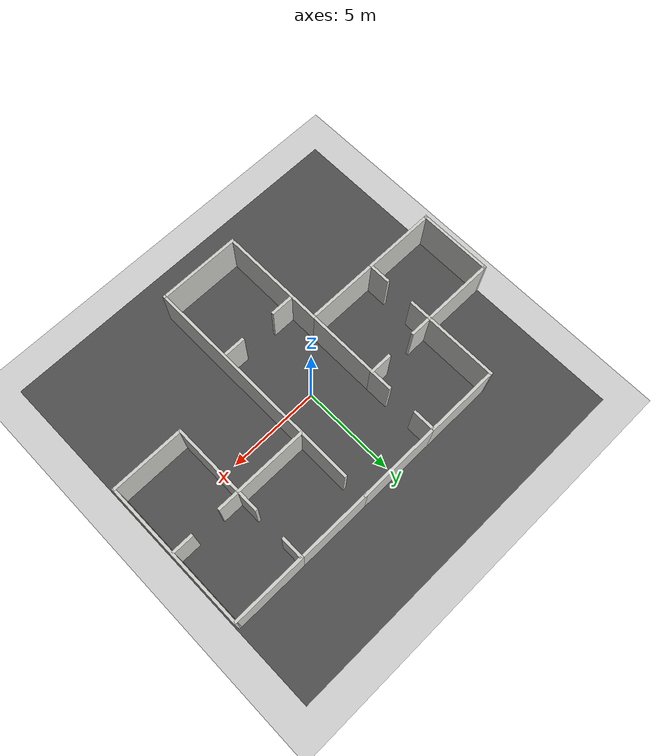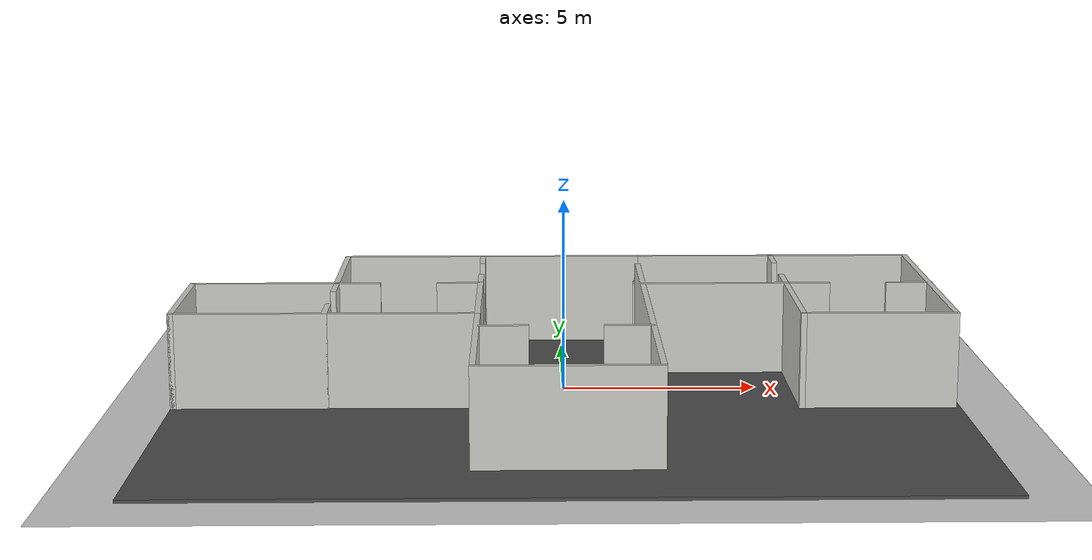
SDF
<sdf version="1.6">
 <world name="default">
  <model name="ground_plane">
   <static>1</static>
   <link name="link">
    <collision name="collision">
     <geometry><plane><normal>0 0 1</normal><size>100 100</size></plane></geometry>
     <surface><friction><ode><mu>100</mu><mu2>50</mu2></ode></friction></surface>
    </collision>
    <visual name="visual">
     <cast_shadows>0</cast_shadows>
     <geometry><plane><normal>0 0 1</normal><size>100 100</size></plane></geometry>
     <material>
      <script><uri>file://media/materials/scripts/gazebo.material</uri><name>Gazebo/Grey</name></script>
     </material>
    </visual>
   </link>
  </model>
  <gravity>0 0 -9.8</gravity>
  <magnetic_field>6e-06 2.3e-05 -4.2e-05</magnetic_field>
  <atmosphere type="adiabatic"/>
  <physics name="default_physics" default="0" type="ode">
   <max_step_size>0.001</max_step_size>
   <real_time_factor>1</real_time_factor>
   <real_time_update_rate>1000</real_time_update_rate>
  </physics>
  <scene><ambient>0.4 0.4 0.4 1</ambient><background>0.7 0.7 0.7 1</background><shadows>1</shadows></scene>
  <spherical_coordinates>
   <surface_model>EARTH_WGS84</surface_model>
   <latitude_deg>0</latitude_deg>
   <longitude_deg>0</longitude_deg>
   <elevation>0</elevation>
   <heading_deg>0</heading_deg>
  </spherical_coordinates>
  <model name="FinalWorld">
   <pose>-0.03344 -1.10734 0 0 -0 0</pose>
   <link name="Wall_0">
    <collision name="Wall_0_Collision">
     <geometry><box><size>4 0.15 2.5</size></box></geometry>
     <pose>0 0 1.25 0 -0 0</pose>
    </collision>
    <visual name="Wall_0_Visual">
     <pose>0 0 1.25 0 -0 0</pose>
     <geometry><box><size>4 0.15 2.5</size></box></geometry>
     <material>
      <script><uri>file://media/materials/scripts/gazebo.material</uri><name>Gazebo/CeilingTiled</name></script>
      <ambient>1 1 1 1</ambient>
     </material>
     <meta><layer>0</layer></meta>
    </visual>
    <pose>-9.8813 0.9 0 0 0 -1.5708</pose>
   </link>
   <link name="Wall_11">
    <collision name="Wall_11_Collision">
     <geometry><box><size>4 0.15 2.5</size></box></geometry>
     <pose>0 0 1.25 0 -0 0</pose>
    </collision>
    <visual name="Wall_11_Visual">
     <pose>0 0 1.25 0 -0 0</pose>
     <geometry><box><size>4 0.15 2.5</size></box></geometry>
     <material>
      <script><uri>file://media/materials/scripts/gazebo.material</uri><name>Gazebo/CeilingTiled</name></script>
      <ambient>1 1 1 1</ambient>
     </material>
     <meta><layer>0</layer></meta>
    </visual>
    <pose>-4.1063 -1.025 0 0 -0 0</pose>
   </link>
   <link name="Wall_12">
    <collision name="Wall_12_Collision">
     <geometry><box><size>4 0.15 2.5</size></box></geometry>
     <pose>0 0 1.25 0 -0 0</pose>
    </collision>
    <visual name="Wall_12_Visual">
     <pose>0 0 1.25 0 -0 0</pose>
     <geometry><box><size>4 0.15 2.5</size></box></geometry>
     <material>
      <script><uri>file://media/materials/scripts/gazebo.material</uri><name>Gazebo/CeilingTiled</name></script>
      <ambient>1 1 1 1</ambient>
     </material>
     <meta><layer>0</layer></meta>
    </visual>
    <pose>-2.1813 0.9 0 0 -0 1.5708</pose>
   </link>
   <link name="Wall_15">
    <collision name="Wall_15_Collision">
     <geometry><box><size>1.25 0.15 2.5</size></box></geometry>
     <pose>0 0 1.25 0 -0 0</pose>
    </collision>
    <visual name="Wall_15_Visual">
     <pose>0 0 1.25 0 -0 0</pose>
     <geometry><box><size>1.25 0.15 2.5</size></box></geometry>
     <material>
      <script><uri>file://media/materials/scripts/gazebo.material</uri><name>Gazebo/CeilingTiled</name></script>
      <ambient>1 1 1 1</ambient>
     </material>
     <meta><layer>0</layer></meta>
    </visual>
    <pose>-2.7313 2.825 0 0 -0 3.14159</pose>
   </link>
   <link name="Wall_17">
    <collision name="Wall_17_Collision">
     <geometry><box><size>1.25 0.15 2.5</size></box></geometry>
     <pose>0 0 1.25 0 -0 0</pose>
    </collision>
    <visual name="Wall_17_Visual">
     <pose>0 0 1.25 0 -0 0</pose>
     <geometry><box><size>1.25 0.15 2.5</size></box></geometry>
     <material>
      <script><uri>file://media/materials/scripts/gazebo.material</uri><name>Gazebo/CeilingTiled</name></script>
      <ambient>1 1 1 1</ambient>
     </material>
     <meta><layer>0</layer></meta>
    </visual>
    <pose>-5.4813 2.825 0 0 -0 0</pose>
   </link>
   <link name="Wall_20">
    <collision name="Wall_20_Collision">
     <geometry><box><size>4 0.15 2.5</size></box></geometry>
     <pose>0 0 1.25 0 -0 0</pose>
    </collision>
    <visual name="Wall_20_Visual">
     <pose>0 0 1.25 0 -0 0</pose>
     <geometry><box><size>4 0.15 2.5</size></box></geometry>
     <material>
      <script><uri>file://media/materials/scripts/gazebo.material</uri><name>Gazebo/CeilingTiled</name></script>
      <ambient>1 1 1 1</ambient>
     </material>
     <meta><layer>0</layer></meta>
    </visual>
    <pose>-6.0313 4.75 0 0 -0 1.5708</pose>
   </link>
   <link name="Wall_21">
    <collision name="Wall_21_Collision">
     <geometry><box><size>4 0.15 2.5</size></box></geometry>
     <pose>0 0 1.25 0 -0 0</pose>
    </collision>
    <visual name="Wall_21_Visual">
     <pose>0 0 1.25 0 -0 0</pose>
     <geometry><box><size>4 0.15 2.5</size></box></geometry>
     <material>
      <script><uri>file://media/materials/scripts/gazebo.material</uri><name>Gazebo/CeilingTiled</name></script>
      <ambient>1 1 1 1</ambient>
     </material>
     <meta><layer>0</layer></meta>
    </visual>
    <pose>-4.1063 6.675 0 0 -0 0</pose>
   </link>
   <link name="Wall_22">
    <collision name="Wall_22_Collision">
     <geometry><box><size>1.25 0.15 2.5</size></box></geometry>
     <pose>0 0 1.25 0 -0 0</pose>
    </collision>
    <visual name="Wall_22_Visual">
     <pose>0 0 1.25 0 -0 0</pose>
     <geometry><box><size>1.25 0.15 2.5</size></box></geometry>
     <material>
      <script><uri>file://media/materials/scripts/gazebo.material</uri><name>Gazebo/CeilingTiled</name></script>
      <ambient>1 1 1 1</ambient>
     </material>
     <meta><layer>0</layer></meta>
    </visual>
    <pose>-2.1813 6.125 0 0 0 -1.5708</pose>
   </link>
   <link name="Wall_24">
    <collision name="Wall_24_Collision">
     <geometry><box><size>1.25 0.15 2.5</size></box></geometry>
     <pose>0 0 1.25 0 -0 0</pose>
    </collision>
    <visual name="Wall_24_Visual">
     <pose>0 0 1.25 0 -0 0</pose>
     <geometry><box><size>1.25 0.15 2.5</size></box></geometry>
     <material>
      <script><uri>file://media/materials/scripts/gazebo.material</uri><name>Gazebo/CeilingTiled</name></script>
      <ambient>1 1 1 1</ambient>
     </material>
     <meta><layer>0</layer></meta>
    </visual>
    <pose>-2.1813 3.375 0 0 -0 1.5708</pose>
   </link>
   <link name="Wall_26">
    <collision name="Wall_26_Collision">
     <geometry><box><size>4.5 0.15 2.5</size></box></geometry>
     <pose>0 0 1.25 0 -0 0</pose>
    </collision>
    <visual name="Wall_26_Visual">
     <pose>0 0 1.25 0 -0 0</pose>
     <geometry><box><size>4.5 0.15 2.5</size></box></geometry>
     <material>
      <script><uri>file://media/materials/scripts/gazebo.material</uri><name>Gazebo/CeilingTiled</name></script>
      <ambient>1 1 1 1</ambient>
     </material>
     <meta><layer>0</layer></meta>
    </visual>
    <pose>-0.0063 6.675 0 0 -0 0</pose>
   </link>
   <link name="Wall_3">
    <collision name="Wall_3_Collision">
     <geometry><box><size>4 0.15 2.5</size></box></geometry>
     <pose>0 0 1.25 0 -0 0</pose>
    </collision>
    <visual name="Wall_3_Visual">
     <pose>0 0 1.25 0 -0 0</pose>
     <geometry><box><size>4 0.15 2.5</size></box></geometry>
     <material>
      <script><uri>file://media/materials/scripts/gazebo.material</uri><name>Gazebo/CeilingTiled</name></script>
      <ambient>1 1 1 1</ambient>
     </material>
     <meta><layer>0</layer></meta>
    </visual>
    <pose>-7.9563 2.825 0 0 -0 0</pose>
   </link>
   <link name="Wall_32">
    <collision name="Wall_32_Collision">
     <geometry><box><size>5.75 0.15 2.5</size></box></geometry>
     <pose>0 0 1.25 0 -0 0</pose>
    </collision>
    <visual name="Wall_32_Visual">
     <pose>0 0 1.25 0 -0 0</pose>
     <geometry><box><size>5.75 0.15 2.5</size></box></geometry>
     <material>
      <script><uri>file://media/materials/scripts/gazebo.material</uri><name>Gazebo/CeilingTiled</name></script>
      <ambient>1 1 1 1</ambient>
     </material>
     <meta><layer>0</layer></meta>
    </visual>
    <pose>-2.1813 -3.825 0 0 0 -1.5708</pose>
   </link>
   <link name="Wall_34">
    <collision name="Wall_34_Collision">
     <geometry><box><size>4.5 0.15 2.5</size></box></geometry>
     <pose>0 0 1.25 0 -0 0</pose>
    </collision>
    <visual name="Wall_34_Visual">
     <pose>0 0 1.25 0 -0 0</pose>
     <geometry><box><size>4.5 0.15 2.5</size></box></geometry>
     <material>
      <script><uri>file://media/materials/scripts/gazebo.material</uri><name>Gazebo/CeilingTiled</name></script>
      <ambient>1 1 1 1</ambient>
     </material>
     <meta><layer>0</layer></meta>
    </visual>
    <pose>-0.0063 -6.675 0 0 -0 3.14159</pose>
   </link>
   <link name="Wall_36">
    <collision name="Wall_36_Collision">
     <geometry><box><size>12.25 0.15 2.5</size></box></geometry>
     <pose>0 0 1.25 0 -0 0</pose>
    </collision>
    <visual name="Wall_36_Visual">
     <pose>0 0 1.25 0 -0 0</pose>
     <geometry><box><size>12.25 0.15 2.5</size></box></geometry>
     <material>
      <script><uri>file://media/materials/scripts/gazebo.material</uri><name>Gazebo/CeilingTiled</name></script>
      <ambient>1 1 1 1</ambient>
     </material>
     <meta><layer>0</layer></meta>
    </visual>
    <pose>2.1687 -0.625 0 0 -0 1.5708</pose>
   </link>
   <link name="Wall_38">
    <collision name="Wall_38_Collision">
     <geometry><box><size>4 0.15 2.5</size></box></geometry>
     <pose>0 0 1.25 0 -0 0</pose>
    </collision>
    <visual name="Wall_38_Visual">
     <pose>0 0 1.25 0 -0 0</pose>
     <geometry><box><size>4 0.15 2.5</size></box></geometry>
     <material>
      <script><uri>file://media/materials/scripts/gazebo.material</uri><name>Gazebo/CeilingTiled</name></script>
      <ambient>1 1 1 1</ambient>
     </material>
     <meta><layer>0</layer></meta>
    </visual>
    <pose>4.0937 6.675 0 0 -0 0</pose>
   </link>
   <link name="Wall_39">
    <collision name="Wall_39_Collision">
     <geometry><box><size>1.25 0.15 2.5</size></box></geometry>
     <pose>0 0 1.25 0 -0 0</pose>
    </collision>
    <visual name="Wall_39_Visual">
     <pose>0 0 1.25 0 -0 0</pose>
     <geometry><box><size>1.25 0.15 2.5</size></box></geometry>
     <material>
      <script><uri>file://media/materials/scripts/gazebo.material</uri><name>Gazebo/CeilingTiled</name></script>
      <ambient>1 1 1 1</ambient>
     </material>
     <meta><layer>0</layer></meta>
    </visual>
    <pose>6.0187 6.125 0 0 0 -1.5708</pose>
   </link>
   <link name="Wall_41">
    <collision name="Wall_41_Collision">
     <geometry><box><size>4 0.15 2.5</size></box></geometry>
     <pose>0 0 1.25 0 -0 0</pose>
    </collision>
    <visual name="Wall_41_Visual">
     <pose>0 0 1.25 0 -0 0</pose>
     <geometry><box><size>4 0.15 2.5</size></box></geometry>
     <material>
      <script><uri>file://media/materials/scripts/gazebo.material</uri><name>Gazebo/CeilingTiled</name></script>
      <ambient>1 1 1 1</ambient>
     </material>
     <meta><layer>0</layer></meta>
    </visual>
    <pose>7.9437 6.675 0 0 -0 0</pose>
   </link>
   <link name="Wall_43">
    <collision name="Wall_43_Collision">
     <geometry><box><size>8 0.15 2.5</size></box></geometry>
     <pose>0 0 1.25 0 -0 0</pose>
    </collision>
    <visual name="Wall_43_Visual">
     <pose>0 0 1.25 0 -0 0</pose>
     <geometry><box><size>8 0.15 2.5</size></box></geometry>
     <material>
      <script><uri>file://media/materials/scripts/gazebo.material</uri><name>Gazebo/CeilingTiled</name></script>
      <ambient>1 1 1 1</ambient>
     </material>
     <meta><layer>0</layer></meta>
    </visual>
    <pose>9.8687 2.75 0 0 0 -1.5708</pose>
   </link>
   <link name="Wall_44">
    <collision name="Wall_44_Collision">
     <geometry><box><size>4 0.15 2.5</size></box></geometry>
     <pose>0 0 1.25 0 -0 0</pose>
    </collision>
    <visual name="Wall_44_Visual">
     <pose>0 0 1.25 0 -0 0</pose>
     <geometry><box><size>4 0.15 2.5</size></box></geometry>
     <material>
      <script><uri>file://media/materials/scripts/gazebo.material</uri><name>Gazebo/CeilingTiled</name></script>
      <ambient>1 1 1 1</ambient>
     </material>
     <meta><layer>0</layer></meta>
    </visual>
    <pose>7.9437 -1.175 0 0 -0 3.14159</pose>
   </link>
   <link name="Wall_45">
    <collision name="Wall_45_Collision">
     <geometry><box><size>4 0.15 2.5</size></box></geometry>
     <pose>0 0 1.25 0 -0 0</pose>
    </collision>
    <visual name="Wall_45_Visual">
     <pose>0 0 1.25 0 -0 0</pose>
     <geometry><box><size>4 0.15 2.5</size></box></geometry>
     <material>
      <script><uri>file://media/materials/scripts/gazebo.material</uri><name>Gazebo/CeilingTiled</name></script>
      <ambient>1 1 1 1</ambient>
     </material>
     <meta><layer>0</layer></meta>
    </visual>
    <pose>6.0187 0.75 0 0 -0 1.5708</pose>
   </link>
   <link name="Wall_46">
    <collision name="Wall_46_Collision">
     <geometry><box><size>1.25 0.15 2.5</size></box></geometry>
     <pose>0 0 1.25 0 -0 0</pose>
    </collision>
    <visual name="Wall_46_Visual">
     <pose>0 0 1.25 0 -0 0</pose>
     <geometry><box><size>1.25 0.15 2.5</size></box></geometry>
     <material>
      <script><uri>file://media/materials/scripts/gazebo.material</uri><name>Gazebo/CeilingTiled</name></script>
      <ambient>1 1 1 1</ambient>
     </material>
     <meta><layer>0</layer></meta>
    </visual>
    <pose>6.5687 2.675 0 0 -0 0</pose>
   </link>
   <link name="Wall_48">
    <collision name="Wall_48_Collision">
     <geometry><box><size>1.25 0.15 2.5</size></box></geometry>
     <pose>0 0 1.25 0 -0 0</pose>
    </collision>
    <visual name="Wall_48_Visual">
     <pose>0 0 1.25 0 -0 0</pose>
     <geometry><box><size>1.25 0.15 2.5</size></box></geometry>
     <material>
      <script><uri>file://media/materials/scripts/gazebo.material</uri><name>Gazebo/CeilingTiled</name></script>
      <ambient>1 1 1 1</ambient>
     </material>
     <meta><layer>0</layer></meta>
    </visual>
    <pose>9.3313 2.70324 0 0 -0 3.14159</pose>
   </link>
   <link name="Wall_5">
    <collision name="Wall_5_Collision">
     <geometry><box><size>4 0.15 2.5</size></box></geometry>
     <pose>0 0 1.25 0 -0 0</pose>
    </collision>
    <visual name="Wall_5_Visual">
     <pose>0 0 1.25 0 -0 0</pose>
     <geometry><box><size>4 0.15 2.5</size></box></geometry>
     <material>
      <script><uri>file://media/materials/scripts/gazebo.material</uri><name>Gazebo/CeilingTiled</name></script>
      <ambient>1 1 1 1</ambient>
     </material>
     <meta><layer>0</layer></meta>
    </visual>
    <pose>-7.9563 -1.025 0 0 -0 0</pose>
   </link>
   <link name="Wall_50">
    <collision name="Wall_50_Collision">
     <geometry><box><size>1.25 0.15 2.5</size></box></geometry>
     <pose>0 0 1.25 0 -0 0</pose>
    </collision>
    <visual name="Wall_50_Visual">
     <pose>0 0 1.25 0 -0 0</pose>
     <geometry><box><size>1.25 0.15 2.5</size></box></geometry>
     <material>
      <script><uri>file://media/materials/scripts/gazebo.material</uri><name>Gazebo/CeilingTiled</name></script>
      <ambient>1 1 1 1</ambient>
     </material>
     <meta><layer>0</layer></meta>
    </visual>
    <pose>6.0187 3.225 0 0 -0 1.5708</pose>
   </link>
   <link name="Wall_52">
    <collision name="Wall_52_Collision">
     <geometry><box><size>4 0.15 2.5</size></box></geometry>
     <pose>0 0 1.25 0 -0 0</pose>
    </collision>
    <visual name="Wall_52_Visual">
     <pose>0 0 1.25 0 -0 0</pose>
     <geometry><box><size>4 0.15 2.5</size></box></geometry>
     <material>
      <script><uri>file://media/materials/scripts/gazebo.material</uri><name>Gazebo/CeilingTiled</name></script>
      <ambient>1 1 1 1</ambient>
     </material>
     <meta><layer>0</layer></meta>
    </visual>
    <pose>4.0937 2.675 0 0 -0 3.14159</pose>
   </link>
   <link name="Wall_7">
    <collision name="Wall_7_Collision">
     <geometry><box><size>1.25 0.15 2.5</size></box></geometry>
     <pose>0 0 1.25 0 -0 0</pose>
    </collision>
    <visual name="Wall_7_Visual">
     <pose>0 0 1.25 0 -0 0</pose>
     <geometry><box><size>1.25 0.15 2.5</size></box></geometry>
     <material>
      <script><uri>file://media/materials/scripts/gazebo.material</uri><name>Gazebo/CeilingTiled</name></script>
      <ambient>1 1 1 1</ambient>
     </material>
     <meta><layer>0</layer></meta>
    </visual>
    <pose>-6.0313 2.275 0 0 0 -1.5708</pose>
   </link>
   <link name="Wall_9">
    <collision name="Wall_9_Collision">
     <geometry><box><size>1.25 0.15 2.5</size></box></geometry>
     <pose>0 0 1.25 0 -0 0</pose>
    </collision>
    <visual name="Wall_9_Visual">
     <pose>0 0 1.25 0 -0 0</pose>
     <geometry><box><size>1.25 0.15 2.5</size></box></geometry>
     <material>
      <script><uri>file://media/materials/scripts/gazebo.material</uri><name>Gazebo/CeilingTiled</name></script>
      <ambient>1 1 1 1</ambient>
     </material>
     <meta><layer>0</layer></meta>
    </visual>
    <pose>-6.0313 -0.475 0 0 -0 1.5708</pose>
   </link>
   <static>1</static>
  </model>
  <light name="user_directional_light_0" type="directional">
   <pose>-1.36714 3.32525 1 0 -0 0</pose>
   <diffuse>0.5 0.5 0.5 1</diffuse>
   <specular>0.1 0.1 0.1 1</specular>
   <direction>0.1 0.1 -0.9</direction>
   <attenuation>
    <range>20</range>
    <constant>0.5</constant>
    <linear>0.01</linear>
    <quadratic>0.001</quadratic>
   </attenuation>
  </light>
  <light name="user_directional_light_1" type="directional">
   <pose>2.42456 -6.45088 1 0 -0 0</pose>
   <diffuse>0.5 0.5 0.5 1</diffuse>
   <specular>0.1 0.1 0.1 1</specular>
   <direction>0.1 0.1 -0.9</direction>
   <attenuation>
    <range>20</range>
    <constant>0.5</constant>
    <linear>0.01</linear>
    <quadratic>0.001</quadratic>
   </attenuation>
  </light>
  <model name="asphalt_plane">
   <static>1</static>
   <link name="link">
    <collision name="collision"><geometry><box><size>20 20 0.1</size></box></geometry></collision>
    <visual name="visual">
     <cast_shadows>0</cast_shadows>
     <geometry><box><size>20 20 0.1</size></box></geometry>
     <material>
      <script>
       <uri>model://asphalt_plane/materials/scripts</uri>
       <uri>model://asphalt_plane/materials/textures</uri>
       <name>vrc/asphalt</name>
      </script>
     </material>
    </visual>
   </link>
   <pose>0.01558 0.004205 0 0 -0 0</pose>
  </model>
  <model name="Walll">
   <pose>-1.54981 -3.59765 0 0 -0 0</pose>
   <link name="Wall_0">
    <collision name="Wall_0_Collision">
     <geometry><box><size>1.25 0.15 2.5</size></box></geometry>
     <pose>0 0 1.25 0 -0 0</pose>
    </collision>
    <visual name="Wall_0_Visual">
     <pose>0 0 1.25 0 -0 0</pose>
     <geometry><box><size>1.25 0.15 2.5</size></box></geometry>
     <material>
      <script><uri>file://media/materials/scripts/gazebo.material</uri><name>Gazebo/CeilingTiled</name></script>
      <ambient>1 1 1 1</ambient>
     </material>
     <meta><layer>0</layer></meta>
    </visual>
   </link>
   <static>1</static>
  </model>
  <model name="Walll_0">
   <pose>1.53904 -3.60459 0 0 -0 0</pose>
   <link name="Wall_0">
    <collision name="Wall_0_Collision">
     <geometry><box><size>1.25 0.15 2.5</size></box></geometry>
     <pose>0 0 1.25 0 -0 0</pose>
    </collision>
    <visual name="Wall_0_Visual">
     <pose>0 0 1.25 0 -0 0</pose>
     <geometry><box><size>1.25 0.15 2.5</size></box></geometry>
     <material>
      <script><uri>file://media/materials/scripts/gazebo.material</uri><name>Gazebo/CeilingTiled</name></script>
      <ambient>1 1 1 1</ambient>
     </material>
     <meta><layer>0</layer></meta>
    </visual>
   </link>
   <static>1</static>
  </model>
 </world>
</sdf>
